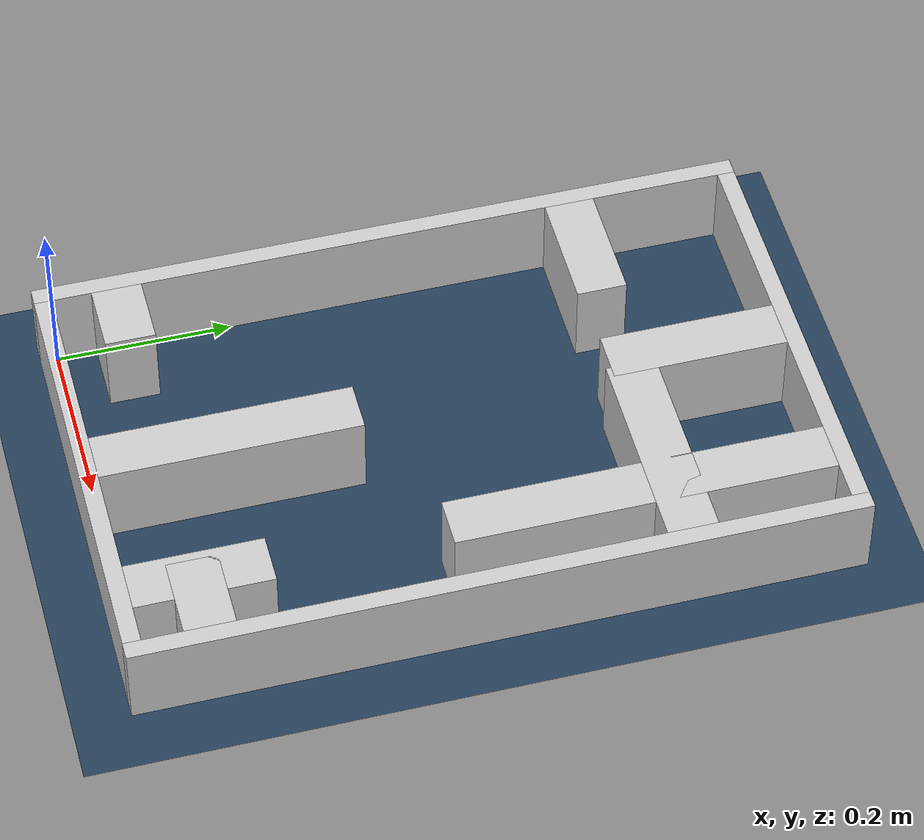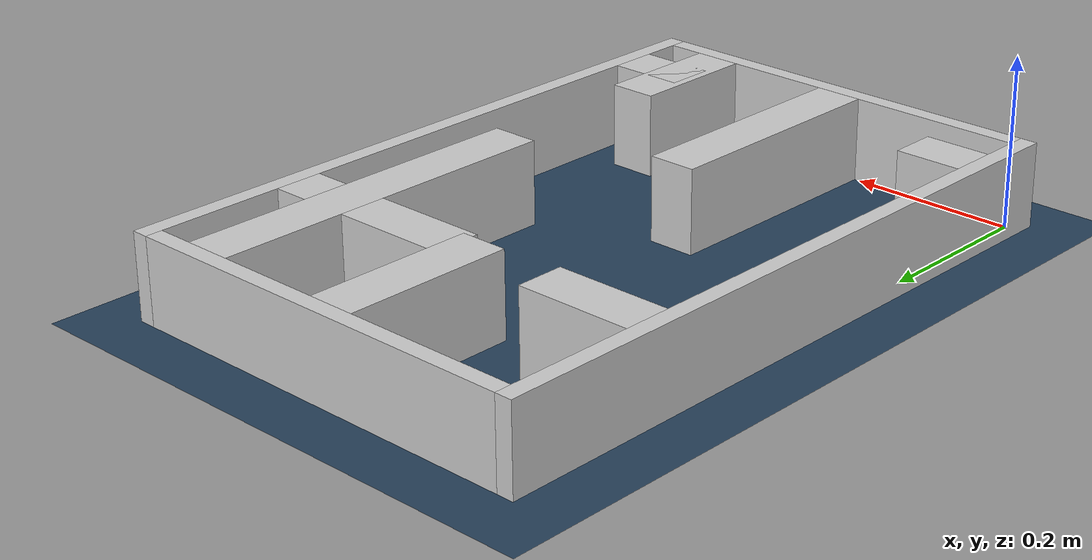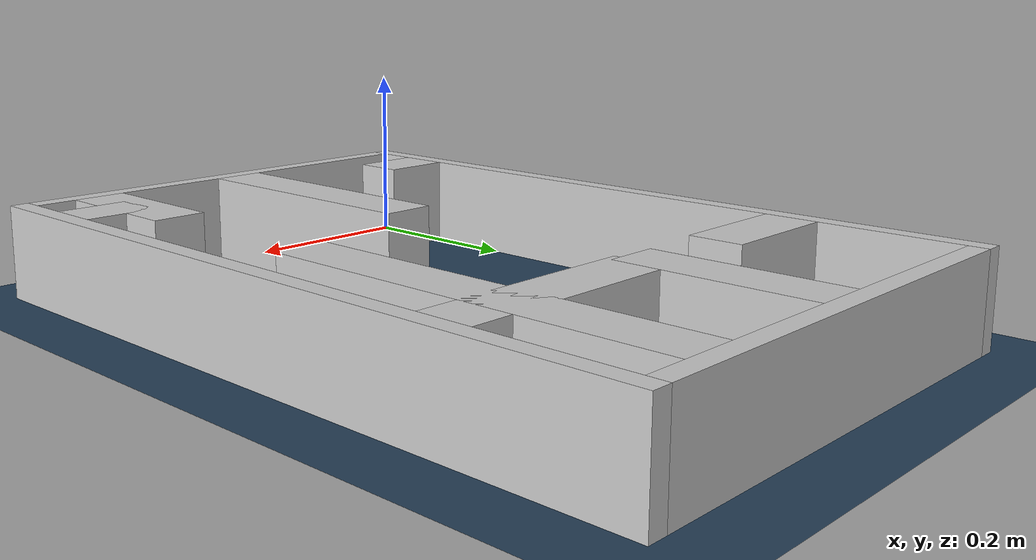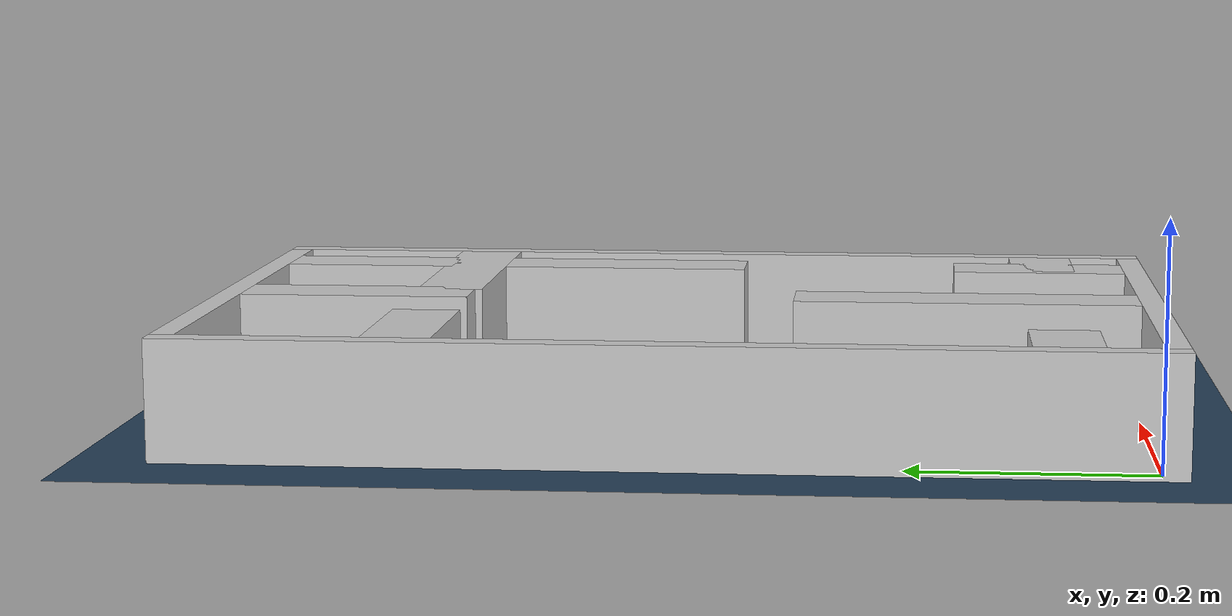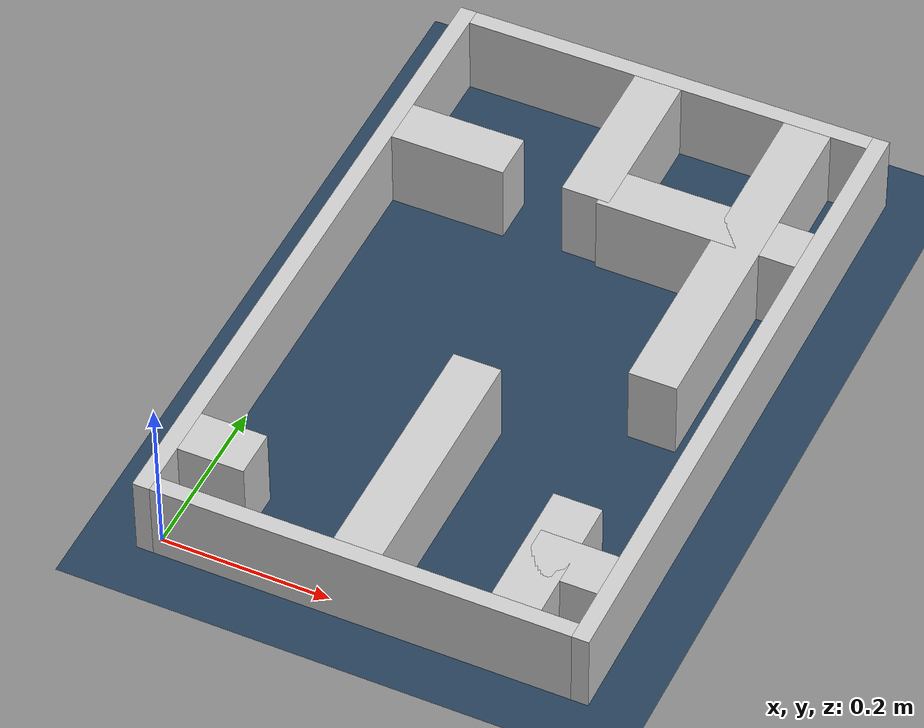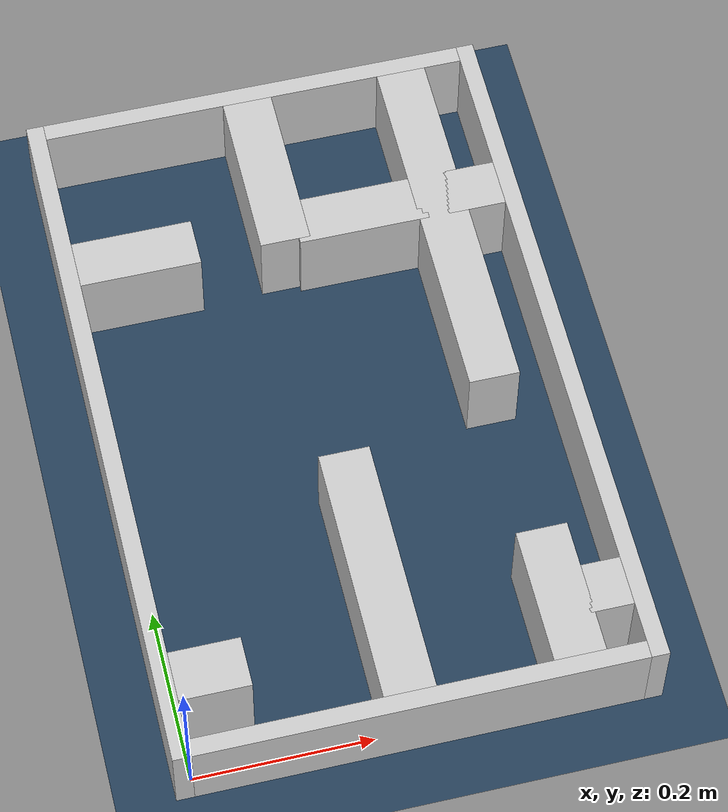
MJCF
<?xml version="1.0" ?>
<mujoco model="generated_real_template">
  <compiler angle="degree"/>
  <option timestep="0.002" integrator="implicitfast" iterations="100" cone="elliptic"/>
  <default>
    <geom density="1"/>
  </default>
  <asset>
    <texture builtin="gradient" height="3072" rgb1="0.3 0.5 0.7" rgb2="0 0 0" type="skybox" width="512"/>
    <texture builtin="checker" height="300" mark="edge" markrgb="0.8 0.8 0.8" name="groundplane" rgb1="0.2 0.3 0.4" rgb2="0.1 0.2 0.3" type="2d" width="300"/>
    <material name="groundplane" reflectance="0.2" texrepeat="5 5" texture="groundplane" texuniform="true"/>
  </asset>
  <worldbody>
    <light dir="0 0 -1" directional="true" pos="0 0 1.5"/>
    <geom name="floor" type="plane" condim="4" friction="0.5 0.005 0.001" material="groundplane" size="0 0 0.05"/>
    <body name="walls">
      <geom name="wall_boundary_left" type="box" condim="4" friction="1.0 0.005 0.0001" rgba="0.8 0.8 0.8 1" pos="-0.010000 0.387500 0.050000" euler="0 0 0.000000" size="0.010000 0.407500 0.050000"/>
      <geom name="wall_boundary_right" type="box" condim="4" friction="1.0 0.005 0.0001" rgba="0.8 0.8 0.8 1" pos="0.500000 0.387500 0.050000" euler="0 0 0.000000" size="0.010000 0.407500 0.050000"/>
      <geom name="wall_boundary_bottom" type="box" condim="4" friction="1.0 0.005 0.0001" rgba="0.8 0.8 0.8 1" pos="0.245000 -0.010000 0.050000" euler="0 0 0.000000" size="0.245000 0.010000 0.050000"/>
      <geom name="wall_boundary_top" type="box" condim="4" friction="1.0 0.005 0.0001" rgba="0.8 0.8 0.8 1" pos="0.245000 0.785000 0.050000" euler="0 0 0.000000" size="0.245000 0.010000 0.050000"/>
      <geom name="wall_inner_1_1" type="box" condim="4" friction="1.0 0.005 0.0001" rgba="0.8 0.8 0.8 1" pos="0.068787 0.598377 0.050000" euler="0 0 0.000000" size="0.068787 0.028500 0.050000"/>
      <geom name="wall_inner_1_2" type="box" condim="4" friction="1.0 0.005 0.0001" rgba="0.8 0.8 0.8 1" pos="0.370675 0.598377 0.050000" euler="0 0 0.000000" size="0.119325 0.028500 0.050000"/>
      <geom name="wall_inner_2_1" type="box" condim="4" friction="1.0 0.005 0.0001" rgba="0.8 0.8 0.8 1" pos="0.418417 0.077302 0.050000" euler="0 0 90.000000" size="0.077302 0.028500 0.050000"/>
      <geom name="wall_inner_2_2" type="box" condim="4" friction="1.0 0.005 0.0001" rgba="0.8 0.8 0.8 1" pos="0.418417 0.561368 0.050000" euler="0 0 90.000000" size="0.213632 0.028500 0.050000"/>
      <geom name="wall_inner_3_1" type="box" condim="4" friction="1.0 0.005 0.0001" rgba="0.8 0.8 0.8 1" pos="0.235597 0.147295 0.050000" euler="0 0 90.000000" size="0.147295 0.028500 0.050000"/>
      <geom name="wall_inner_3_2" type="box" condim="4" friction="1.0 0.005 0.0001" rgba="0.8 0.8 0.8 1" pos="0.235597 0.675521 0.050000" euler="0 0 90.000000" size="0.099479 0.028500 0.050000"/>
      <geom name="wall_inner_4_1" type="box" condim="4" friction="1.0 0.005 0.0001" rgba="0.8 0.8 0.8 1" pos="0.039433 0.073253 0.050000" euler="0 0 0.000000" size="0.039433 0.028500 0.050000"/>
      <geom name="wall_inner_4_2" type="box" condim="4" friction="1.0 0.005 0.0001" rgba="0.8 0.8 0.8 1" pos="0.444780 0.073253 0.050000" euler="0 0 0.000000" size="0.045220 0.028500 0.050000"/>
    </body>
  </worldbody>
</mujoco>
